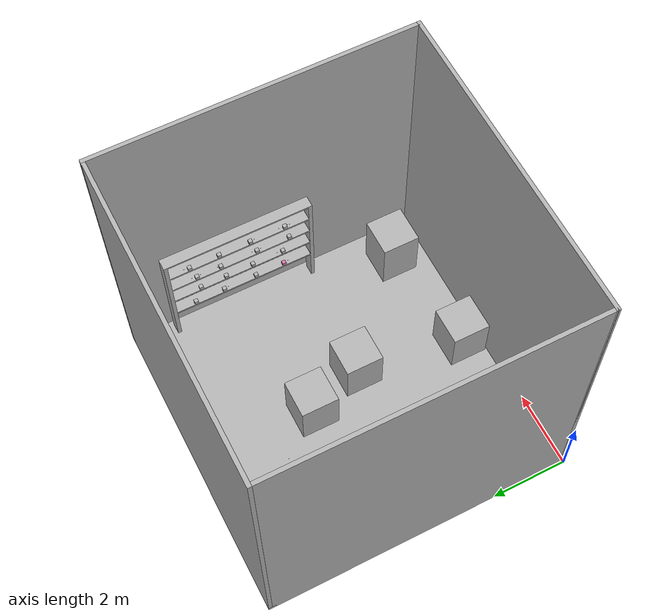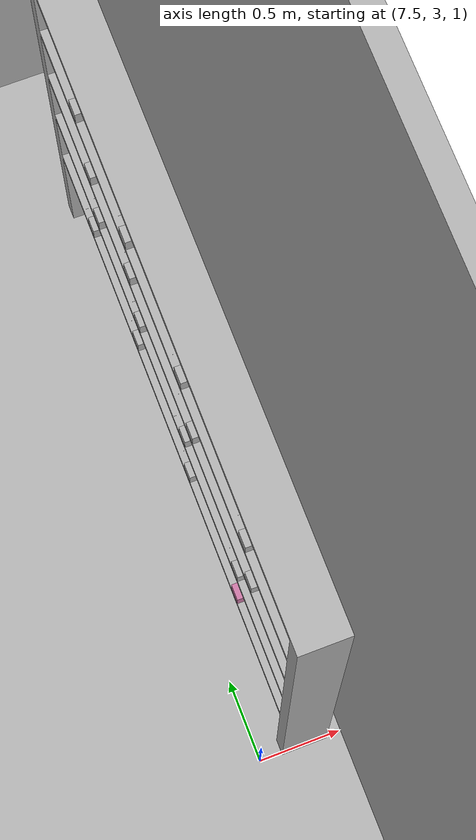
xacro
<?xml version="1.0" ?>
<robot name="arena" xmlns:xacro="http://www.ros.org/wiki/xacro">

<xacro:include filename="$(find arena_description)/urdf/materials.xacro" />
<xacro:include filename="$(find arena_description)/urdf/arena.trans" />
<xacro:include filename="$(find arena_description)/urdf/arena.gazebo" />
<link name="base_link">
  <inertial>
    <origin xyz="0.050000000000000676 4.1 4.051234949058351" rpy="0 0 0"/>
    <mass value="50852.299999999996"/>
    <inertia ixx="548920.527029" iyy="277911.876279" izz="271093.404583" ixy="0.0" iyz="0.0" ixz="-0.0"/>
  </inertial>
  <visual>
    <origin xyz="0 0 0" rpy="0 0 0"/>
    <geometry>
      <mesh filename="package://arena_description/meshes/base_link.stl" scale="0.001 0.001 0.001"/>
    </geometry>
    <material name="silver"/>
  </visual>
  <collision>
    <origin xyz="0 0 0" rpy="0 0 0"/>
    <geometry>
      <mesh filename="package://arena_description/meshes/base_link.stl" scale="0.001 0.001 0.001"/>
    </geometry>
  </collision>
</link>

<link name="piso_1">
  <inertial>
    <origin xyz="4.051311075503581 -3.897858862995343 -3.755345033912977e-05" rpy="0 0 0"/>
    <mass value="50264.649"/>
    <inertia ixx="268677.259926" iyy="268647.997861" izz="537241.606722" ixy="177.260653" iyz="-5.294361" ixz="-3.302211"/>
  </inertial>
  <visual>
    <origin xyz="-0.05 -8.0 -0.05" rpy="0 0 0"/>
    <geometry>
      <mesh filename="package://arena_description/meshes/piso_1.stl" scale="0.001 0.001 0.001"/>
    </geometry>
    <material name="silver"/>
  </visual>
  <collision>
    <origin xyz="-0.05 -8.0 -0.05" rpy="0 0 0"/>
    <geometry>
      <mesh filename="package://arena_description/meshes/piso_1.stl" scale="0.001 0.001 0.001"/>
    </geometry>
  </collision>
</link>

<link name="parede2_1">
  <inertial>
    <origin xyz="3.9500000000000006 0.0 4.001219698124713" rpy="0 0 0"/>
    <mass value="51488.149999999994"/>
    <inertia ixx="281388.916986" iyy="562692.096986" izz="281388.993583" ixy="0.0" iyz="0.0" ixz="-0.0"/>
  </inertial>
  <visual>
    <origin xyz="-0.1 -8.15 -0.05" rpy="0 0 0"/>
    <geometry>
      <mesh filename="package://arena_description/meshes/parede2_1.stl" scale="0.001 0.001 0.001"/>
    </geometry>
    <material name="silver"/>
  </visual>
  <collision>
    <origin xyz="-0.1 -8.15 -0.05" rpy="0 0 0"/>
    <geometry>
      <mesh filename="package://arena_description/meshes/parede2_1.stl" scale="0.001 0.001 0.001"/>
    </geometry>
  </collision>
</link>

<link name="parede3_1">
  <inertial>
    <origin xyz="0.0 -3.9499999999999993 4.001219698124713" rpy="0 0 0"/>
    <mass value="51488.149999999994"/>
    <inertia ixx="562692.096986" iyy="281388.916986" izz="281388.993583" ixy="0.0" iyz="-0.0" ixz="0.0"/>
  </inertial>
  <visual>
    <origin xyz="-8.15 -8.1 -0.05" rpy="0 0 0"/>
    <geometry>
      <mesh filename="package://arena_description/meshes/parede3_1.stl" scale="0.001 0.001 0.001"/>
    </geometry>
    <material name="silver"/>
  </visual>
  <collision>
    <origin xyz="-8.15 -8.1 -0.05" rpy="0 0 0"/>
    <geometry>
      <mesh filename="package://arena_description/meshes/parede3_1.stl" scale="0.001 0.001 0.001"/>
    </geometry>
  </collision>
</link>

<link name="parede4_1">
  <inertial>
    <origin xyz="3.8999999999999995 -0.14999999999999977 4.001204819277108" rpy="0 0 0"/>
    <mass value="52123.99999999999"/>
    <inertia ixx="284865.957671" iyy="576721.107671" izz="291942.023333" ixy="0.0" iyz="-0.0" ixz="-0.0"/>
  </inertial>
  <visual>
    <origin xyz="-0.2 -0.2 -0.05" rpy="0 0 0"/>
    <geometry>
      <mesh filename="package://arena_description/meshes/parede4_1.stl" scale="0.001 0.001 0.001"/>
    </geometry>
    <material name="silver"/>
  </visual>
  <collision>
    <origin xyz="-0.2 -0.2 -0.05" rpy="0 0 0"/>
    <geometry>
      <mesh filename="package://arena_description/meshes/parede4_1.stl" scale="0.001 0.001 0.001"/>
    </geometry>
  </collision>
</link>

<link name="prateleira_1">
  <inertial>
    <origin xyz="0.00010377143843776082 1.9499636789186838 1.9546700793635738" rpy="0 0 0"/>
    <mass value="3788.0900444916265"/>
    <inertia ixx="11660.252029" iyy="3086.566437" izz="8630.480654" ixy="-0.013773" iyz="-0.048602" ixz="0.011695"/>
  </inertial>
  <visual>
    <origin xyz="-7.85 -3.15 -0.099" rpy="0 0 0"/>
    <geometry>
      <mesh filename="package://arena_description/meshes/prateleira_1.stl" scale="0.001 0.001 0.001"/>
    </geometry>
    <material name="silver"/>
  </visual>
  <collision>
    <origin xyz="-7.85 -3.15 -0.099" rpy="0 0 0"/>
    <geometry>
      <mesh filename="package://arena_description/meshes/prateleira_1.stl" scale="0.001 0.001 0.001"/>
    </geometry>
  </collision>
</link>

<link name="cubo_A0_1">
  <inertial>
    <origin xyz="-2.5757174171303632e-14 -2.1760371282653068e-14 0.04999999999998095" rpy="0 0 0"/>
    <mass value="7.85"/>
    <inertia ixx="0.013083" iyy="0.013083" izz="0.013083" ixy="0.0" iyz="-0.0" ixz="-0.0"/>
  </inertial>
  <visual>
    <origin xyz="-7.75 -3.95 -1.149" rpy="0 0 0"/>
    <geometry>
      <mesh filename="package://arena_description/meshes/cubo_A0_1.stl" scale="0.001 0.001 0.001"/>
    </geometry>
    <material name="CuboA0Material"/>
  </visual>
  <collision>
    <origin xyz="-7.75 -3.95 -1.149" rpy="0 0 0"/>
    <geometry>
      <mesh filename="package://arena_description/meshes/cubo_A0_1.stl" scale="0.001 0.001 0.001"/>
    </geometry>
  </collision>
</link>

<link name="cubo_A1_1">
  <inertial>
    <origin xyz="-2.842170943040401e-14 -2.7533531010703882e-14 0.049999999999982725" rpy="0 0 0"/>
    <mass value="7.85"/>
    <inertia ixx="0.013083" iyy="0.013083" izz="0.013083" ixy="0.0" iyz="-0.0" ixz="-0.0"/>
  </inertial>
  <visual>
    <origin xyz="-7.75 -4.75 -1.149" rpy="0 0 0"/>
    <geometry>
      <mesh filename="package://arena_description/meshes/cubo_A1_1.stl" scale="0.001 0.001 0.001"/>
    </geometry>
    <material name="silver"/>
  </visual>
  <collision>
    <origin xyz="-7.75 -4.75 -1.149" rpy="0 0 0"/>
    <geometry>
      <mesh filename="package://arena_description/meshes/cubo_A1_1.stl" scale="0.001 0.001 0.001"/>
    </geometry>
  </collision>
</link>

<link name="cubo_A2_1">
  <inertial>
    <origin xyz="-3.2862601528904634e-14 -3.6415315207705135e-14 0.049999999999980504" rpy="0 0 0"/>
    <mass value="7.85"/>
    <inertia ixx="0.013083" iyy="0.013083" izz="0.013083" ixy="0.0" iyz="-0.0" ixz="-0.0"/>
  </inertial>
  <visual>
    <origin xyz="-7.75 -5.65 -1.149" rpy="0 0 0"/>
    <geometry>
      <mesh filename="package://arena_description/meshes/cubo_A2_1.stl" scale="0.001 0.001 0.001"/>
    </geometry>
    <material name="silver"/>
  </visual>
  <collision>
    <origin xyz="-7.75 -5.65 -1.149" rpy="0 0 0"/>
    <geometry>
      <mesh filename="package://arena_description/meshes/cubo_A2_1.stl" scale="0.001 0.001 0.001"/>
    </geometry>
  </collision>
</link>

<link name="cubo_A3_1">
  <inertial>
    <origin xyz="-3.552713678800501e-14 -4.085620730620576e-14 0.049999999999980504" rpy="0 0 0"/>
    <mass value="7.85"/>
    <inertia ixx="0.013083" iyy="0.013083" izz="0.013083" ixy="0.0" iyz="-0.0" ixz="-0.0"/>
  </inertial>
  <visual>
    <origin xyz="-7.75 -6.45 -1.149" rpy="0 0 0"/>
    <geometry>
      <mesh filename="package://arena_description/meshes/cubo_A3_1.stl" scale="0.001 0.001 0.001"/>
    </geometry>
    <material name="silver"/>
  </visual>
  <collision>
    <origin xyz="-7.75 -6.45 -1.149" rpy="0 0 0"/>
    <geometry>
      <mesh filename="package://arena_description/meshes/cubo_A3_1.stl" scale="0.001 0.001 0.001"/>
    </geometry>
  </collision>
</link>

<link name="cubo_B0_1">
  <inertial>
    <origin xyz="-1.4299672557172016e-13 -7.993605777301127e-14 0.04999999999999516" rpy="0 0 0"/>
    <mass value="7.850000000007763"/>
    <inertia ixx="0.013083" iyy="0.013083" izz="0.013083" ixy="0.0" iyz="0.0" ixz="-0.0"/>
  </inertial>
  <visual>
    <origin xyz="-7.75 -6.25 -1.749" rpy="0 0 0"/>
    <geometry>
      <mesh filename="package://arena_description/meshes/cubo_B0_1.stl" scale="0.001 0.001 0.001"/>
    </geometry>
    <material name="silver"/>
  </visual>
  <collision>
    <origin xyz="-7.75 -6.25 -1.749" rpy="0 0 0"/>
    <geometry>
      <mesh filename="package://arena_description/meshes/cubo_B0_1.stl" scale="0.001 0.001 0.001"/>
    </geometry>
  </collision>
</link>

<link name="cubo_B1_1">
  <inertial>
    <origin xyz="-1.3322676295501878e-13 -7.460698725481052e-14 0.049999999999988276" rpy="0 0 0"/>
    <mass value="7.850000000006157"/>
    <inertia ixx="0.013083" iyy="0.013083" izz="0.013083" ixy="0.0" iyz="-0.0" ixz="0.0"/>
  </inertial>
  <visual>
    <origin xyz="-7.75 -5.55 -1.749" rpy="0 0 0"/>
    <geometry>
      <mesh filename="package://arena_description/meshes/cubo_B1_1.stl" scale="0.001 0.001 0.001"/>
    </geometry>
    <material name="silver"/>
  </visual>
  <collision>
    <origin xyz="-7.75 -5.55 -1.749" rpy="0 0 0"/>
    <geometry>
      <mesh filename="package://arena_description/meshes/cubo_B1_1.stl" scale="0.001 0.001 0.001"/>
    </geometry>
  </collision>
</link>

<link name="cubo_B2_1">
  <inertial>
    <origin xyz="-1.2079226507921703e-13 -6.306066779870889e-14 0.04999999999997695" rpy="0 0 0"/>
    <mass value="7.85000000000464"/>
    <inertia ixx="0.013083" iyy="0.013083" izz="0.013083" ixy="0.0" iyz="-0.0" ixz="-0.0"/>
  </inertial>
  <visual>
    <origin xyz="-7.75 -4.8 -1.749" rpy="0 0 0"/>
    <geometry>
      <mesh filename="package://arena_description/meshes/cubo_B2_1.stl" scale="0.001 0.001 0.001"/>
    </geometry>
    <material name="silver"/>
  </visual>
  <collision>
    <origin xyz="-7.75 -4.8 -1.749" rpy="0 0 0"/>
    <geometry>
      <mesh filename="package://arena_description/meshes/cubo_B2_1.stl" scale="0.001 0.001 0.001"/>
    </geometry>
  </collision>
</link>

<link name="cubo_B3_1">
  <inertial>
    <origin xyz="-1.0480505352461478e-13 -5.773159728050814e-14 0.04999999999996785" rpy="0 0 0"/>
    <mass value="7.850000000002766"/>
    <inertia ixx="0.013083" iyy="0.013083" izz="0.013083" ixy="0.0" iyz="0.0" ixz="-0.0"/>
  </inertial>
  <visual>
    <origin xyz="-7.75 -3.95 -1.749" rpy="0 0 0"/>
    <geometry>
      <mesh filename="package://arena_description/meshes/cubo_B3_1.stl" scale="0.001 0.001 0.001"/>
    </geometry>
    <material name="silver"/>
  </visual>
  <collision>
    <origin xyz="-7.75 -3.95 -1.749" rpy="0 0 0"/>
    <geometry>
      <mesh filename="package://arena_description/meshes/cubo_B3_1.stl" scale="0.001 0.001 0.001"/>
    </geometry>
  </collision>
</link>

<link name="cubo_C3_1">
  <inertial>
    <origin xyz="-1.0036416142611415e-13 -6.084022174945858e-14 0.04999999999992122" rpy="0 0 0"/>
    <mass value="7.849999999999374"/>
    <inertia ixx="0.013083" iyy="0.013083" izz="0.013083" ixy="0.0" iyz="-0.0" ixz="-0.0"/>
  </inertial>
  <visual>
    <origin xyz="-7.75 -3.75 -2.299" rpy="0 0 0"/>
    <geometry>
      <mesh filename="package://arena_description/meshes/cubo_C3_1.stl" scale="0.001 0.001 0.001"/>
    </geometry>
    <material name="silver"/>
  </visual>
  <collision>
    <origin xyz="-7.75 -3.75 -2.299" rpy="0 0 0"/>
    <geometry>
      <mesh filename="package://arena_description/meshes/cubo_C3_1.stl" scale="0.001 0.001 0.001"/>
    </geometry>
  </collision>
</link>

<link name="cubo_C2_1">
  <inertial>
    <origin xyz="-1.0658141036401503e-13 -6.483702463810914e-14 0.04999999999991589" rpy="0 0 0"/>
    <mass value="7.849999999999731"/>
    <inertia ixx="0.013083" iyy="0.013083" izz="0.013083" ixy="0.0" iyz="-0.0" ixz="0.0"/>
  </inertial>
  <visual>
    <origin xyz="-7.75 -4.65 -2.299" rpy="0 0 0"/>
    <geometry>
      <mesh filename="package://arena_description/meshes/cubo_C2_1.stl" scale="0.001 0.001 0.001"/>
    </geometry>
    <material name="silver"/>
  </visual>
  <collision>
    <origin xyz="-7.75 -4.65 -2.299" rpy="0 0 0"/>
    <geometry>
      <mesh filename="package://arena_description/meshes/cubo_C2_1.stl" scale="0.001 0.001 0.001"/>
    </geometry>
  </collision>
</link>

<link name="cubo_C1_1">
  <inertial>
    <origin xyz="-1.163513729807164e-13 -7.904787935331115e-14 0.04999999999992388" rpy="0 0 0"/>
    <mass value="7.850000000002141"/>
    <inertia ixx="0.013083" iyy="0.013083" izz="0.013083" ixy="0.0" iyz="0.0" ixz="-0.0"/>
  </inertial>
  <visual>
    <origin xyz="-7.75 -5.65 -2.299" rpy="0 0 0"/>
    <geometry>
      <mesh filename="package://arena_description/meshes/cubo_C1_1.stl" scale="0.001 0.001 0.001"/>
    </geometry>
    <material name="silver"/>
  </visual>
  <collision>
    <origin xyz="-7.75 -5.65 -2.299" rpy="0 0 0"/>
    <geometry>
      <mesh filename="package://arena_description/meshes/cubo_C1_1.stl" scale="0.001 0.001 0.001"/>
    </geometry>
  </collision>
</link>

<link name="cubo_C0_1">
  <inertial>
    <origin xyz="-1.2256862191861728e-13 3.175270020250309e-07 0.04999999999992699" rpy="0 0 0"/>
    <mass value="7.850000000002231"/>
    <inertia ixx="0.013083" iyy="0.013083" izz="0.013083" ixy="0.0" iyz="-0.0" ixz="-0.0"/>
  </inertial>
  <visual>
    <origin xyz="-7.75 -6.303793 -2.299" rpy="0 0 0"/>
    <geometry>
      <mesh filename="package://arena_description/meshes/cubo_C0_1.stl" scale="0.001 0.001 0.001"/>
    </geometry>
    <material name="silver"/>
  </visual>
  <collision>
    <origin xyz="-7.75 -6.303793 -2.299" rpy="0 0 0"/>
    <geometry>
      <mesh filename="package://arena_description/meshes/cubo_C0_1.stl" scale="0.001 0.001 0.001"/>
    </geometry>
  </collision>
</link>

<link name="cubo_D3_1">
  <inertial>
    <origin xyz="-1.4299672557172016e-13 -6.394884621840902e-14 0.04999999999992166" rpy="0 0 0"/>
    <mass value="7.850000000007942"/>
    <inertia ixx="0.013083" iyy="0.013083" izz="0.013083" ixy="0.0" iyz="-0.0" ixz="-0.0"/>
  </inertial>
  <visual>
    <origin xyz="-7.75 -3.85 -2.849" rpy="0 0 0"/>
    <geometry>
      <mesh filename="package://arena_description/meshes/cubo_D3_1.stl" scale="0.001 0.001 0.001"/>
    </geometry>
    <material name="silver"/>
  </visual>
  <collision>
    <origin xyz="-7.75 -3.85 -2.849" rpy="0 0 0"/>
    <geometry>
      <mesh filename="package://arena_description/meshes/cubo_D3_1.stl" scale="0.001 0.001 0.001"/>
    </geometry>
  </collision>
</link>

<link name="cupo_D2_1">
  <inertial>
    <origin xyz="-1.474376176702208e-13 -7.016609515630989e-14 0.04999999999992122" rpy="0 0 0"/>
    <mass value="7.85000000000812"/>
    <inertia ixx="0.013083" iyy="0.013083" izz="0.013083" ixy="0.0" iyz="-0.0" ixz="-0.0"/>
  </inertial>
  <visual>
    <origin xyz="-7.75 -4.8 -2.849" rpy="0 0 0"/>
    <geometry>
      <mesh filename="package://arena_description/meshes/cupo_D2_1.stl" scale="0.001 0.001 0.001"/>
    </geometry>
    <material name="silver"/>
  </visual>
  <collision>
    <origin xyz="-7.75 -4.8 -2.849" rpy="0 0 0"/>
    <geometry>
      <mesh filename="package://arena_description/meshes/cupo_D2_1.stl" scale="0.001 0.001 0.001"/>
    </geometry>
  </collision>
</link>

<link name="cupo_D1_1">
  <inertial>
    <origin xyz="-1.5276668818842154e-13 -7.904787935331115e-14 0.04999999999995586" rpy="0 0 0"/>
    <mass value="7.850000000013654"/>
    <inertia ixx="0.013083" iyy="0.013083" izz="0.013083" ixy="0.0" iyz="-0.0" ixz="-0.0"/>
  </inertial>
  <visual>
    <origin xyz="-7.75 -5.65 -2.849" rpy="0 0 0"/>
    <geometry>
      <mesh filename="package://arena_description/meshes/cupo_D1_1.stl" scale="0.001 0.001 0.001"/>
    </geometry>
    <material name="silver"/>
  </visual>
  <collision>
    <origin xyz="-7.75 -5.65 -2.849" rpy="0 0 0"/>
    <geometry>
      <mesh filename="package://arena_description/meshes/cupo_D1_1.stl" scale="0.001 0.001 0.001"/>
    </geometry>
  </collision>
</link>

<link name="cupo_D0_1">
  <inertial>
    <origin xyz="-1.580957587066223e-13 -8.348877145181177e-14 0.049999999999926104" rpy="0 0 0"/>
    <mass value="7.850000000008834"/>
    <inertia ixx="0.013083" iyy="0.013083" izz="0.013083" ixy="0.0" iyz="0.0" ixz="-0.0"/>
  </inertial>
  <visual>
    <origin xyz="-7.75 -6.45 -2.849" rpy="0 0 0"/>
    <geometry>
      <mesh filename="package://arena_description/meshes/cupo_D0_1.stl" scale="0.001 0.001 0.001"/>
    </geometry>
    <material name="silver"/>
  </visual>
  <collision>
    <origin xyz="-7.75 -6.45 -2.849" rpy="0 0 0"/>
    <geometry>
      <mesh filename="package://arena_description/meshes/cupo_D0_1.stl" scale="0.001 0.001 0.001"/>
    </geometry>
  </collision>
</link>

<link name="Base_de_Takeoff_1">
  <inertial>
    <origin xyz="2.220446049250313e-16 -1.1102230246251565e-16 0.25049999999999983" rpy="0 0 0"/>
    <mass value="11798.549999999997"/>
    <inertia ixx="2459.015446" iyy="4179.637321" izz="6145.078125" ixy="0.0" iyz="0.0" ixz="0.0"/>
  </inertial>
  <visual>
    <origin xyz="-1.1 -0.85 -0.099" rpy="0 0 0"/>
    <geometry>
      <mesh filename="package://arena_description/meshes/Base_de_Takeoff_1.stl" scale="0.001 0.001 0.001"/>
    </geometry>
    <material name="Base_de_TakeoffMaterial"/>
  </visual>
  <collision>
    <origin xyz="-1.1 -0.85 -0.099" rpy="0 0 0"/>
    <geometry>
      <mesh filename="package://arena_description/meshes/Base_de_Takeoff_1.stl" scale="0.001 0.001 0.001"/>
    </geometry>
  </collision>
</link>

<link name="Base_suspensa_1.5_1">
  <inertial>
    <origin xyz="0.0 -4.440892098500626e-16 0.7504999999999991" rpy="0 0 0"/>
    <mass value="11782.849999999999"/>
    <inertia ixx="3194.135236" iyy="3194.135236" izz="1963.808333" ixy="0.0" iyz="0.0" ixz="-0.0"/>
  </inertial>
  <visual>
    <origin xyz="-7.1 -1.1 -0.099" rpy="0 0 0"/>
    <geometry>
      <mesh filename="package://arena_description/meshes/Base_suspensa_1.5_1.stl" scale="0.001 0.001 0.001"/>
    </geometry>
    <material name="silver"/>
  </visual>
  <collision>
    <origin xyz="-7.1 -1.1 -0.099" rpy="0 0 0"/>
    <geometry>
      <mesh filename="package://arena_description/meshes/Base_suspensa_1.5_1.stl" scale="0.001 0.001 0.001"/>
    </geometry>
  </collision>
</link>

<link name="base_supensa_1.0_1">
  <inertial>
    <origin xyz="1.1102230246251565e-15 -3.1086244689504383e-15 0.5004999999999995" rpy="0 0 0"/>
    <mass value="7857.849999999996"/>
    <inertia ixx="1310.951963" iyy="1310.951963" izz="1309.641667" ixy="-0.0" iyz="0.0" ixz="-0.0"/>
  </inertial>
  <visual>
    <origin xyz="-1.1 -3.6 -0.099" rpy="0 0 0"/>
    <geometry>
      <mesh filename="package://arena_description/meshes/base_supensa_1.0_1.stl" scale="0.001 0.001 0.001"/>
    </geometry>
    <material name="silver"/>
  </visual>
  <collision>
    <origin xyz="-1.1 -3.6 -0.099" rpy="0 0 0"/>
    <geometry>
      <mesh filename="package://arena_description/meshes/base_supensa_1.0_1.stl" scale="0.001 0.001 0.001"/>
    </geometry>
  </collision>
</link>

<link name="base_movel_3_1">
  <inertial>
    <origin xyz="8.881784197001252e-16 -2.6645352591003757e-15 0.6499999999999991" rpy="0 0 0"/>
    <mass value="10205.0"/>
    <inertia ixx="2287.620833" iyy="2287.620833" izz="1700.833333" ixy="0.0" iyz="0.0" ixz="-0.0"/>
  </inertial>
  <visual>
    <origin xyz="-4.1 -4.1 -0.1" rpy="0 0 0"/>
    <geometry>
      <mesh filename="package://arena_description/meshes/base_movel_3_1.stl" scale="0.001 0.001 0.001"/>
    </geometry>
    <material name="silver"/>
  </visual>
  <collision>
    <origin xyz="-4.1 -4.1 -0.1" rpy="0 0 0"/>
    <geometry>
      <mesh filename="package://arena_description/meshes/base_movel_3_1.stl" scale="0.001 0.001 0.001"/>
    </geometry>
  </collision>
</link>

<link name="Base_movel_1_1">
  <inertial>
    <origin xyz="1.1102230246251565e-15 -4.440892098500626e-15 0.6499999999999994" rpy="0 0 0"/>
    <mass value="10205.0"/>
    <inertia ixx="2287.620833" iyy="2287.620833" izz="1700.833333" ixy="0.0" iyz="0.0" ixz="0.0"/>
  </inertial>
  <visual>
    <origin xyz="-1.7 -6.2 -0.1001" rpy="0 0 0"/>
    <geometry>
      <mesh filename="package://arena_description/meshes/Base_movel_1_1.stl" scale="0.001 0.001 0.001"/>
    </geometry>
    <material name="silver"/>
  </visual>
  <collision>
    <origin xyz="-1.7 -6.2 -0.1001" rpy="0 0 0"/>
    <geometry>
      <mesh filename="package://arena_description/meshes/Base_movel_1_1.stl" scale="0.001 0.001 0.001"/>
    </geometry>
  </collision>
</link>

<link name="base_movel_2_1">
  <inertial>
    <origin xyz="8.881784197001252e-16 -4.440892098500626e-15 0.6499999999999992" rpy="0 0 0"/>
    <mass value="10205.0"/>
    <inertia ixx="2287.620833" iyy="2287.620833" izz="1700.833333" ixy="-0.0" iyz="0.0" ixz="0.0"/>
  </inertial>
  <visual>
    <origin xyz="-3.7 -6.2 -0.1001" rpy="0 0 0"/>
    <geometry>
      <mesh filename="package://arena_description/meshes/base_movel_2_1.stl" scale="0.001 0.001 0.001"/>
    </geometry>
    <material name="silver"/>
  </visual>
  <collision>
    <origin xyz="-3.7 -6.2 -0.1001" rpy="0 0 0"/>
    <geometry>
      <mesh filename="package://arena_description/meshes/base_movel_2_1.stl" scale="0.001 0.001 0.001"/>
    </geometry>
  </collision>
</link>

<joint name="Rigido6" type="fixed">
  <origin xyz="0.05 8.0 0.05" rpy="0 0 0"/>
  <parent link="base_link"/>
  <child link="piso_1"/>
</joint>

<joint name="Rigido7" type="fixed">
  <origin xyz="0.05 0.15 0.0" rpy="0 0 0"/>
  <parent link="piso_1"/>
  <child link="parede2_1"/>
</joint>

<joint name="Rigido8" type="fixed">
  <origin xyz="8.1 0.1 0.0" rpy="0 0 0"/>
  <parent link="piso_1"/>
  <child link="parede3_1"/>
</joint>

<joint name="Rigido9" type="fixed">
  <origin xyz="0.15 -7.8 0.0" rpy="0 0 0"/>
  <parent link="piso_1"/>
  <child link="parede4_1"/>
</joint>

<joint name="Rigido17" type="fixed">
  <origin xyz="7.8 -4.85 0.049" rpy="0 0 0"/>
  <parent link="piso_1"/>
  <child link="prateleira_1"/>
</joint>

<joint name="deslizador_A0" type="fixed">
  <origin xyz="-0.1 0.8 1.05" rpy="0 0 0"/> <!--mudar a posição na origin, mude y (entre 0.9 e 0.7)-->
  <parent link="prateleira_1"/>
  <child link="cubo_A0_1"/>
</joint>

<joint name="deslizador_A1" type="fixed">
  <origin xyz="-0.1 1.6 1.05" rpy="0 0 0"/><!--mudar a posição na origin, mude y (entre 1.7 e 1.5)-->
  <parent link="prateleira_1"/>
  <child link="cubo_A1_1"/>
</joint>

<joint name="delizador_A2" type="fixed">
  <origin xyz="-0.1 2.5 1.05" rpy="0 0 0"/><!--mudar a posição, na origin mude y (entre 2.6 e 2.4)-->
  <parent link="prateleira_1"/>
  <child link="cubo_A2_1"/>
</joint>

<joint name="delizador_A3" type="fixed">
  <origin xyz="-0.1 3.3 1.05" rpy="0 0 0"/><!--mudar a posição, na origin mude y (entre 3.4 e 3.2)-->
  <parent link="prateleira_1"/>
  <child link="cubo_A3_1"/>
</joint>

<joint name="deslizador_B0" type="fixed">
  <origin xyz="-0.1 3.1 1.65" rpy="0 0 0"/><!--mudar a posição, na origin mude y (entre 3.2 e 3.0)-->
  <parent link="prateleira_1"/>
  <child link="cubo_B0_1"/>
</joint>

<joint name="deslizador_B1" type="fixed">
  <origin xyz="-0.1 2.4 1.65" rpy="0 0 0"/><!--mudar a posição, na origin mude y (entre 2.5 e 2.3)-->
  <parent link="prateleira_1"/>
  <child link="cubo_B1_1"/>
</joint>

<joint name="deslizador_B2" type="fixed">
  <origin xyz="-0.1 1.65 1.65" rpy="0 0 0"/><!--mudar a posição, na origin mude y (entre 1.75 e 1.55)-->
  <parent link="prateleira_1"/>
  <child link="cubo_B2_1"/>
</joint>

<joint name="deslizador_B3" type="fixed">
  <origin xyz="-0.1 0.8 1.65" rpy="0 0 0"/><!--mudar a posição, na origin mude y (entre 0.9 e 0.7)-->
  <parent link="prateleira_1"/>
  <child link="cubo_B3_1"/>
</joint>

<joint name="deslizador_C3" type="fixed">
  <origin xyz="-0.1 0.6 2.2" rpy="0 0 0"/><!--mudar a posição, na origin mude y (entre 0.7 e 0.5)-->
  <parent link="prateleira_1"/>
  <child link="cubo_C3_1"/>
</joint>

<joint name="deslizador_C2" type="fixed">
  <origin xyz="-0.1 1.5 2.2" rpy="0 0 0"/><!--mudar a posição, na origin mude y (entre 1.6 e 1.4)-->
  <parent link="prateleira_1"/>
  <child link="cubo_C2_1"/>
</joint>

<joint name="deslizador_C1" type="fixed">
  <origin xyz="-0.1 2.5 2.2" rpy="0 0 0"/><!--mudar a posição, na origin mude y (entre 2.6 e 2.4)-->
  <parent link="prateleira_1"/>
  <child link="cubo_C1_1"/>
</joint>

<joint name="deslizador_C0" type="fixed">
  <origin xyz="-0.1 3.153793 2.2" rpy="0 0 0"/><!--mudar a posição, na origin mude y (entre 3.25 e 3.05)-->
  <parent link="prateleira_1"/>
  <child link="cubo_C0_1"/>
</joint>

<joint name="deslizador_D3" type="fixed">
  <origin xyz="-0.1 0.7 2.75" rpy="0 0 0"/><!--mudar a posição, na origin mude y (entre 0.8 e 0.6)-->
  <parent link="prateleira_1"/>
  <child link="cubo_D3_1"/>
</joint>

<joint name="deslizador_D2" type="fixed">
  <origin xyz="-0.1 1.65 2.75" rpy="0 0 0"/><!--mudar a posição, na origin mude y (entre 1.75 e 1.55)-->
  <parent link="prateleira_1"/>
  <child link="cupo_D2_1"/>
</joint>

<joint name="deslizador_D1" type="fixed">
  <origin xyz="-0.1 2.5 2.75" rpy="0 0 0"/><!--mudar a posição, na origin mude y (entre 2.6 e 2.4)-->
  <parent link="prateleira_1"/>
  <child link="cupo_D1_1"/>
</joint>

<joint name="deslizador_D0" type="fixed">
  <origin xyz="-0.1 3.3 2.75" rpy="0 0 0"/><!--mudar a posição, na origin mude y (entre 3.4 e 3.2)-->
  <parent link="prateleira_1"/>
  <child link="cupo_D0_1"/>
</joint>

<joint name="Rigido37" type="fixed">
  <origin xyz="1.05 -7.15 0.049" rpy="0 0 0"/>
  <parent link="piso_1"/>
  <child link="Base_de_Takeoff_1"/>
</joint>

<joint name="Rigido 38" type="fixed">
  <origin xyz="7.05 -6.9 0.049" rpy="0 0 0"/>
  <parent link="piso_1"/>
  <child link="Base_suspensa_1.5_1"/>
</joint>

<joint name="Rigido 39" type="fixed">
  <origin xyz="1.05 -4.4 0.049" rpy="0 0 0"/>
  <parent link="piso_1"/>
  <child link="base_supensa_1.0_1"/>
</joint>

<joint name="Base_movel_1" type="fixed">
  <origin xyz="4.05 -7.3 0.05" rpy="0 0 0"/><!--mudar a posição, na origin mude x (entre 5.9 e 3.05) e y (entre -3.9 e -7.3)-->
  <parent link="piso_1"/>                   <!--cuidado para não colocar duas bases no mesmo lugar -->
  <child link="base_movel_3_1"/>
</joint>

<joint name="Base_movel_3" type="fixed">
  <origin xyz="4.0 -3.0 0.0501" rpy="0 0 0"/><!--mudar a posição, na origin mude x (entre 6.5 e 0.65 ) e y (entre -0.5 e -3.0)-->
  <parent link="piso_1"/>                   <!--cuidado para não colocar duas bases no mesmo lugar -->
  <child link="Base_movel_1_1"/>
</joint>

<joint name="Base_movel_2" type="fixed">
  <origin xyz="4.5 -4.5 0.0501" rpy="0 0 0"/><!--mudar a posição, na origin mude x (entre 2.2 e 6.5 ) e y (entre -0.5 e -4.7)-->
  <parent link="piso_1"/>                   <!--cuidado para não colocar duas bases no mesmo lugar -->
  <child link="base_movel_2_1"/>
</joint>

</robot>

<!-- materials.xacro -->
<robot name="arena" xmlns:xacro="http://www.ros.org/wiki/xacro" >

<material name="silver">
  <color rgba="0.700 0.700 0.700 1.000"/>
</material>

<material name="CuboA0Material">
  <texture filename="package://arena_description/textures/A0.png"/>
</material>

<material name="Base_de_TakeoffMaterial">
  <texture filename="package://arena_description/textures/Base_de_Takeoff.png"/>
</material>

</robot>

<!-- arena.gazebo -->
<robot name="arena" xmlns:xacro="http://www.ros.org/wiki/xacro" >

<xacro:property name="body_color" value="Gazebo/Silver" />
<xacro:property name="piso_color" value="Gazebo/WoodPallet" />
<xacro:property name="parede_color" value="Gazebo/BlueTransparent" />
<xacro:property name="base_color" value="Gazebo/Blue" />
<xacro:property name="prateleira_color" value="Gazebo/Grey" />
<xacro:property name="A0_color" value="CuboA0Material" />
<xacro:property name="Base_de_Takeoff_color" value="Base_de_TakeoffMaterial" />

<gazebo>
  <plugin name="control" filename="libgazebo_ros_control.so"/>
</gazebo>
<gazebo reference="base_link">
  <material>${parede_color}</material>
  <mu1>0.2</mu1>
  <mu2>0.2</mu2>
  <selfCollide>true</selfCollide>
  <gravity>true</gravity>
</gazebo>

<gazebo reference="piso_1">
  <material>${piso_color}</material>
  <mu1>0.2</mu1>
  <mu2>0.2</mu2>
  <selfCollide>true</selfCollide>
</gazebo>

<gazebo reference="parede2_1">
  <material>${parede_color}</material>
  <mu1>0.2</mu1>
  <mu2>0.2</mu2>
  <selfCollide>true</selfCollide>
</gazebo>

<gazebo reference="parede3_1">
  <material>${parede_color}</material>
  <mu1>0.2</mu1>
  <mu2>0.2</mu2>
  <selfCollide>true</selfCollide>
</gazebo>

<gazebo reference="parede4_1">
  <material>${parede_color}</material>
  <mu1>0.2</mu1>
  <mu2>0.2</mu2>
  <selfCollide>true</selfCollide>
</gazebo>

<gazebo reference="prateleira_1">
  <material>${prateleira_color}</material>
  <mu1>0.2</mu1>
  <mu2>0.2</mu2>
  <selfCollide>true</selfCollide>
</gazebo>

<gazebo reference="cubo_A0_1">
  <material>${A0_color}</material>
  <mu1>0.2</mu1>
  <mu2>0.2</mu2>
  <selfCollide>true</selfCollide>
</gazebo>

<gazebo reference="cubo_A1_1">
  <material>${body_color}</material>
  <mu1>0.2</mu1>
  <mu2>0.2</mu2>
  <selfCollide>true</selfCollide>
</gazebo>

<gazebo reference="cubo_A2_1">
  <material>${body_color}</material>
  <mu1>0.2</mu1>
  <mu2>0.2</mu2>
  <selfCollide>true</selfCollide>
</gazebo>

<gazebo reference="cubo_A3_1">
  <material>${body_color}</material>
  <mu1>0.2</mu1>
  <mu2>0.2</mu2>
  <selfCollide>true</selfCollide>
</gazebo>

<gazebo reference="cubo_B0_1">
  <material>${body_color}</material>
  <mu1>0.2</mu1>
  <mu2>0.2</mu2>
  <selfCollide>true</selfCollide>
</gazebo>

<gazebo reference="cubo_B1_1">
  <material>${body_color}</material>
  <mu1>0.2</mu1>
  <mu2>0.2</mu2>
  <selfCollide>true</selfCollide>
</gazebo>

<gazebo reference="cubo_B2_1">
  <material>${body_color}</material>
  <mu1>0.2</mu1>
  <mu2>0.2</mu2>
  <selfCollide>true</selfCollide>
</gazebo>

<gazebo reference="cubo_B3_1">
  <material>${body_color}</material>
  <mu1>0.2</mu1>
  <mu2>0.2</mu2>
  <selfCollide>true</selfCollide>
</gazebo>

<gazebo reference="cubo_C3_1">
  <material>${body_color}</material>
  <mu1>0.2</mu1>
  <mu2>0.2</mu2>
  <selfCollide>true</selfCollide>
</gazebo>

<gazebo reference="cubo_C2_1">
  <material>${body_color}</material>
  <mu1>0.2</mu1>
  <mu2>0.2</mu2>
  <selfCollide>true</selfCollide>
</gazebo>

<gazebo reference="cubo_C1_1">
  <material>${body_color}</material>
  <mu1>0.2</mu1>
  <mu2>0.2</mu2>
  <selfCollide>true</selfCollide>
</gazebo>

<gazebo reference="cubo_C0_1">
  <material>${body_color}</material>
  <mu1>0.2</mu1>
  <mu2>0.2</mu2>
  <selfCollide>true</selfCollide>
</gazebo>

<gazebo reference="cubo_D3_1">
  <material>${body_color}</material>
  <mu1>0.2</mu1>
  <mu2>0.2</mu2>
  <selfCollide>true</selfCollide>
</gazebo>

<gazebo reference="cupo_D2_1">
  <material>${body_color}</material>
  <mu1>0.2</mu1>
  <mu2>0.2</mu2>
  <selfCollide>true</selfCollide>
</gazebo>

<gazebo reference="cupo_D1_1">
  <material>${body_color}</material>
  <mu1>0.2</mu1>
  <mu2>0.2</mu2>
  <selfCollide>true</selfCollide>
</gazebo>

<gazebo reference="cupo_D0_1">
  <material>${body_color}</material>
  <mu1>0.2</mu1>
  <mu2>0.2</mu2>
  <selfCollide>true</selfCollide>
</gazebo>

<gazebo reference="Base_de_Takeoff_1">
  <material>${base_color}</material>
  <mu1>0.2</mu1>
  <mu2>0.2</mu2>
  <selfCollide>true</selfCollide>
</gazebo>

<gazebo reference="Base_suspensa_1.5_1">
  <material>${base_color}</material>
  <mu1>0.2</mu1>
  <mu2>0.2</mu2>
  <selfCollide>true</selfCollide>
</gazebo>

<gazebo reference="base_supensa_1.0_1">
  <material>${base_color}</material>
  <mu1>0.2</mu1>
  <mu2>0.2</mu2>
  <selfCollide>true</selfCollide>
</gazebo>

<gazebo reference="base_movel_3_1">
  <material>${base_color}</material>
  <mu1>0.2</mu1>
  <mu2>0.2</mu2>
  <selfCollide>true</selfCollide>
</gazebo>

<gazebo reference="Base_movel_1_1">
  <material>${base_color}</material>
  <mu1>0.2</mu1>
  <mu2>0.2</mu2>
  <selfCollide>true</selfCollide>
</gazebo>

<gazebo reference="base_movel_2_1">
  <material>${base_color}</material>
  <mu1>0.2</mu1>
  <mu2>0.2</mu2>
  <selfCollide>true</selfCollide>
</gazebo>

</robot>
